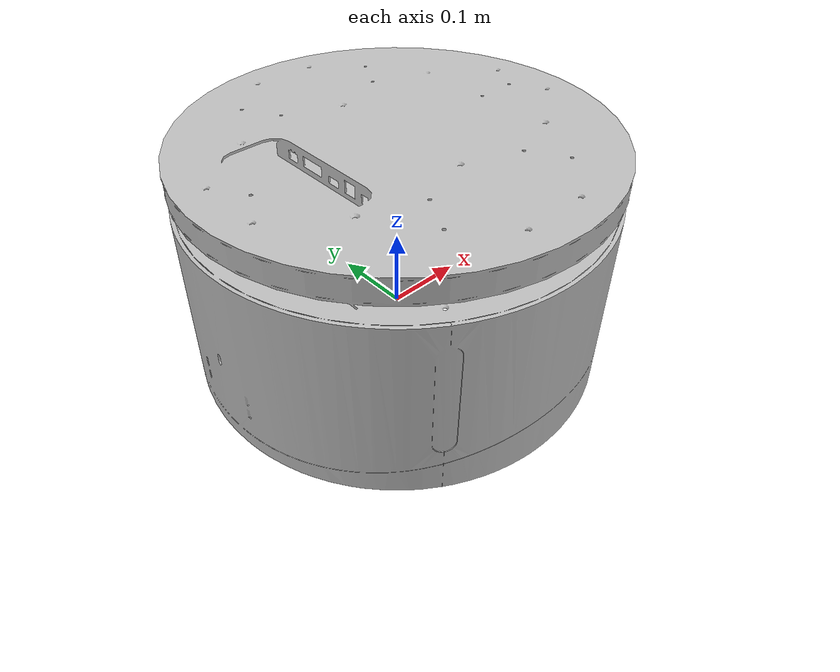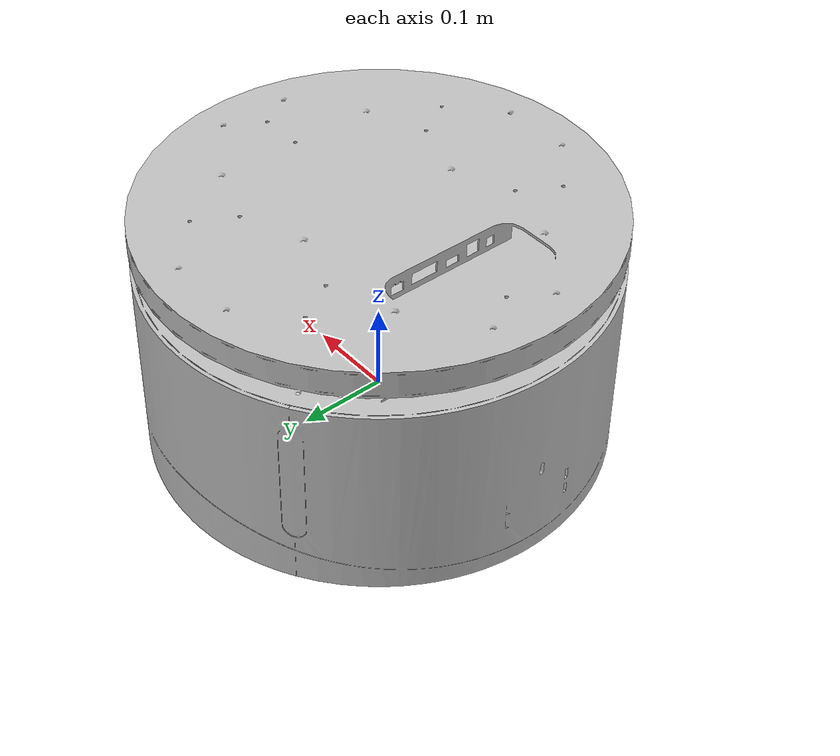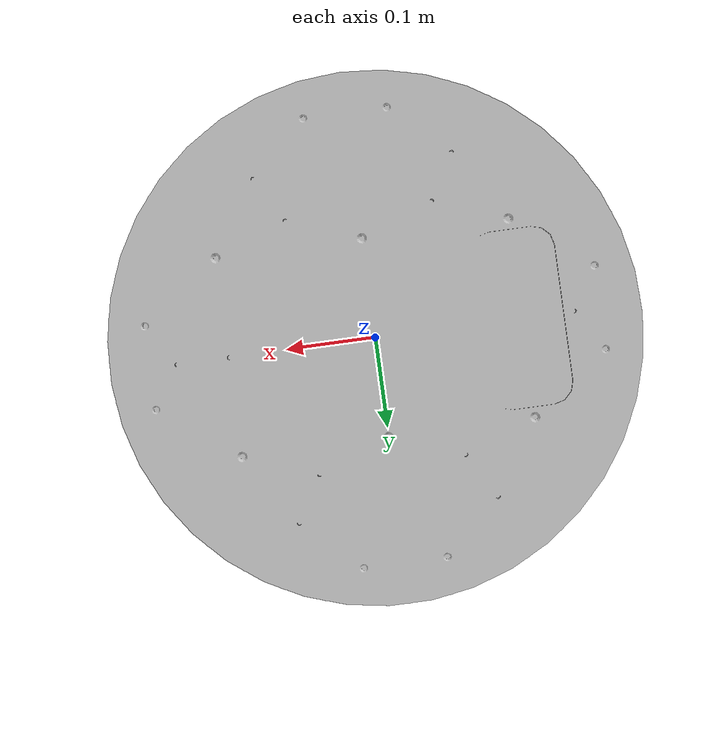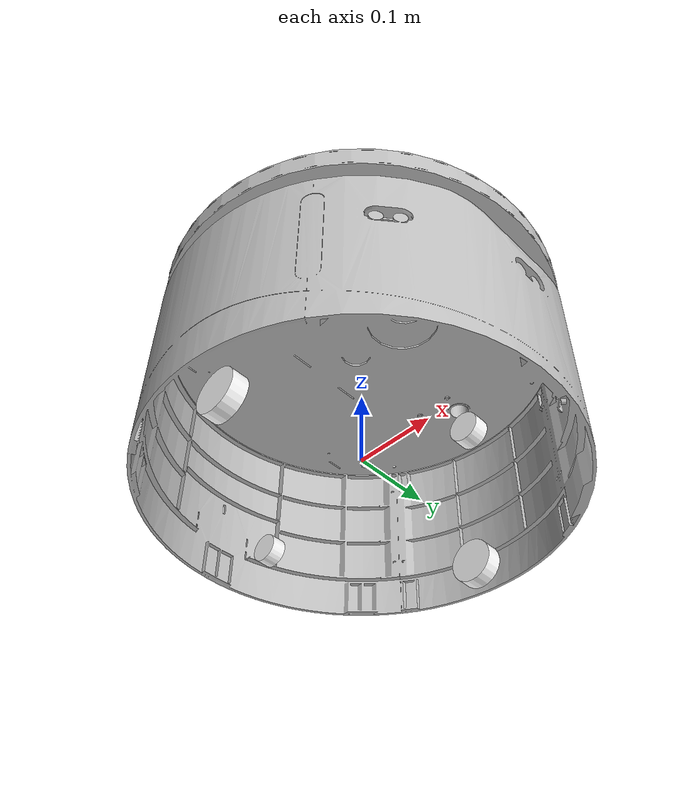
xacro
<?xml version="1.0"?>

<robot name="water_base" xmlns:xacro="http://ros.org/wiki/xacro">
  <xacro:property name="M_PI" value="3.1415926535897931" />
  <link
    name="base_link">
    >
    <inertial>
      <origin
        xyz="0.000104664511012093 0.0049105114230535 0.145650059711867"
        rpy="0 0 0" />
      <mass
        value="3.71154442446242" />
      <inertia
        ixx="0.0465430882693072"
        ixy="0"
        ixz="0"
        iyy="0.0625130465095892"
        iyz="0"
        izz="0.0934102121820444" />
    </inertial>
    <visual>
      <origin
        xyz="0 0 0"
        rpy="0 0 -${M_PI/2}" />
      <geometry>
        <mesh
          filename="package://water_description/meshes/base_link.STL" />
      </geometry>
      <material
        name="">
        <color
          rgba="0.752941176470588 0.752941176470588 0.752941176470588 1" />
      </material>
    </visual>
    <collision>
      <origin
        xyz="0 0 0"
        rpy="0 0 0" />
      <geometry>
        <mesh
          filename="package://water_description/meshes/base_link.STL" />
      </geometry>
    </collision>
  </link>

 <joint name="base_link2_joint" type="fixed">
    <parent link="base_link"/>
    <child link="base_link2"/>
    <origin xyz="0.0 0.0 0.0" rpy="0 0 -${M_PI/2}"/>
    <axis xyz="0 0 1"/>
  </joint>

  <link name="base_link2">
    <visual>
      <geometry>
        <cylinder length="0.0206" radius="0.00035"/>
      </geometry>
      <origin xyz="0 0 0" rpy="0 0 0"/>
    </visual>
    <collision>
      <geometry>
        <cylinder length="0.0206" radius="0.035"/>
      </geometry>
      <origin rpy="0 0 0" xyz="0 0 0"/>
    </collision>
    <inertial>
      <mass value="0.01" />
      <origin xyz="0 0 0" />
      <inertia ixx="0.001" ixy="0.0" ixz="0.0"
                iyy="0.001" iyz="0.0"
                izz="0.001" />
    </inertial>
  </link>

 <joint name="wheel_left_joint" type="continuous">
    <parent link="base_link2"/>
    <child link="wheel_left_link"/>
    <origin xyz="${0.40/2} 0.0 -0.04" rpy="${-M_PI/2} 0 ${M_PI/2}"/>
    <axis xyz="0 0 1"/>
  </joint>

  <link name="wheel_left_link">
    <visual>
      <material
        name="">
        <color
          rgba="1.0 1.0 1.0 1" />
      </material>
      <geometry>
        <cylinder length="0.0206" radius="0.028"/>
      </geometry>
      <origin xyz="0 0 0" rpy="0 0 0"/>
    </visual>
    <collision>
      <geometry>
        <cylinder length="0.0206" radius="0.028"/>
      </geometry>
      <origin rpy="0 0 0" xyz="0 0 0"/>
    </collision>
    <inertial>
      <mass value="0.01" />
      <origin xyz="0 0 0" />
      <inertia ixx="0.001" ixy="0.0" ixz="0.0"
                iyy="0.001" iyz="0.0"
                izz="0.001" />
    </inertial>
  </link>

  <joint name="wheel_right_joint" type="continuous">
    <parent link="base_link2"/>
    <child link="wheel_right_link"/>
    <origin xyz="-${0.40/2} 0.0 -0.04" rpy="${-M_PI/2} 0 ${M_PI/2}"/>
    <axis xyz="0 0 1"/>
  </joint>
  <link name="wheel_right_link">
    <visual>
      <material
        name="">
        <color
          rgba="1.0 1.0 1.0 1" />
      </material>
      <geometry>
        <cylinder length="0.0206" radius="0.028"/>
      </geometry>
      <origin xyz="0 0 0" rpy="0 0 0"/>
    </visual>
    <collision>
      <geometry>
        <cylinder length="0.0206" radius="0.028"/>
      </geometry>
      <origin rpy="0 0 0" xyz="0 0 0"/>
    </collision>
    <inertial>
      <mass value="0.01" />
      <origin xyz="0 0 0" />
      <inertia ixx="0.001" ixy="0.0" ixz="0.0"
                iyy="0.001" iyz="0.0"
                izz="0.001" />
    </inertial>
  </link>

  <joint name="caster_front_joint" type="fixed">
    <parent link="base_link2"/>
    <child link="caster_front_link"/>
    <origin xyz="0 0.15 -0.05" rpy="${-M_PI/2} 0 ${M_PI/2}"/>
  </joint>
  <link name="caster_front_link">
    <collision>
      <geometry>
        <cylinder length="0.0176" radius="0.017"/>
      </geometry>
      <origin rpy="0 0 0" xyz="0 0 0"/>
    </collision>
    <inertial>
      <mass value="0.01" />
      <origin xyz="0 0 0" />
      <inertia ixx="0.1" ixy="0.0" ixz="0.0"
                iyy="0.1" iyz="0.0"
                izz="0.1" />
    </inertial>
    <visual>
      <material
        name="">
        <color
          rgba="1.0 1.0 1.0 1" />
      </material>
      <geometry>
        <cylinder length="0.0176" radius="0.017"/>
      </geometry>
      <origin xyz="0 0 0" rpy="0 0 0"/>
    </visual>
  </link>

  <joint name="caster_back_joint" type="fixed">
    <parent link="base_link2"/>
    <child link="caster_back_link"/>
    <origin xyz="0.0 -0.15 -0.05" rpy="${-M_PI/2} 0 ${M_PI/2}"/>
  </joint>
  <link name="caster_back_link">
    <collision>
      <geometry>
        <cylinder length="0.0176" radius="0.017"/>
      </geometry>
      <origin rpy="0 0 0" xyz="0 0 0"/>
    </collision>
    <inertial>
      <mass value="0.01" />
      <origin xyz="0 0 0" />
      <inertia ixx="0.1" ixy="0.0" ixz="0.0"
                iyy="0.1" iyz="0.0"
                izz="0.1" />
    </inertial>
    <visual>
      <material
        name="">
        <color
          rgba="1.0 1.0 1.0 1" />
      </material>
      <geometry>
        <cylinder length="0.0176" radius="0.017"/>
      </geometry>
      <origin xyz="0 0 0" rpy="0 0 0"/>
    </visual>
  </link>

</robot>
